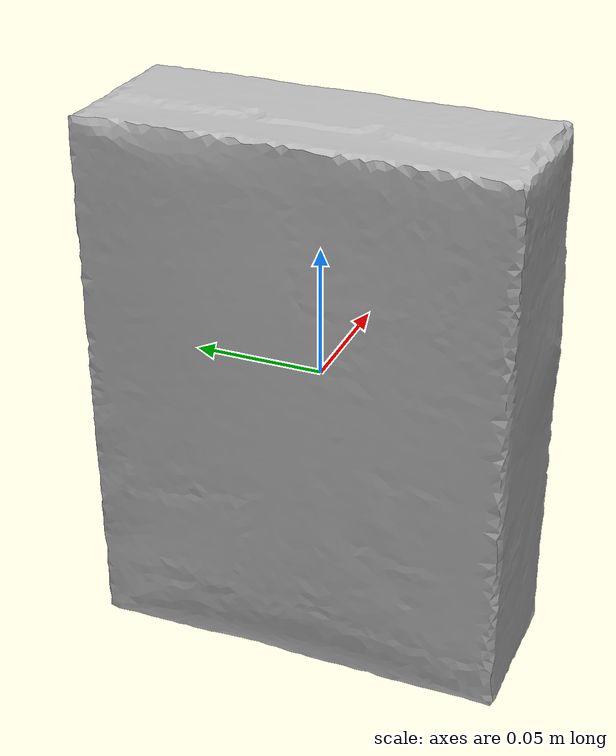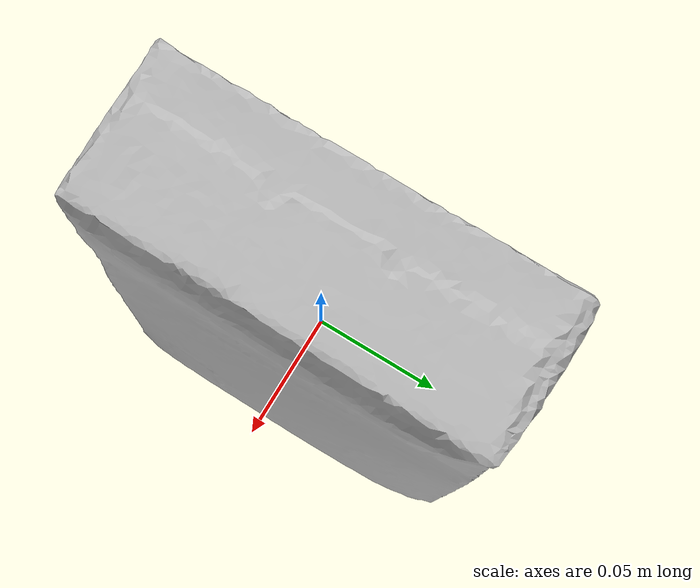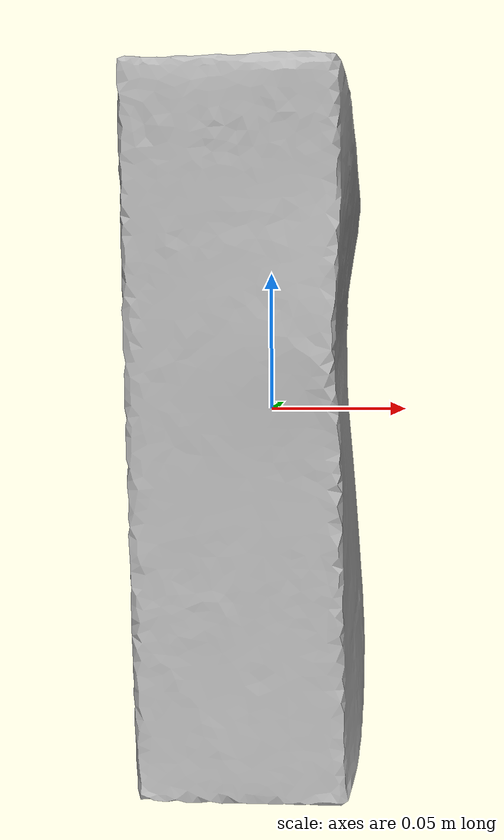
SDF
<?xml version='1.0'?>
<sdf version="1.4">
  <model name="cracker_box">
    <static>false</static>
    <link name="link">
      <inertial>
        <pose>0 0 0 3.1335923663863205 0.010946297886106997 3.140976285001705</pose>
        <mass>0.0021732875685518717</mass>
        <inertia>
          <ixx>1.2667764335249053e-05</ixx>
          <ixy>1.5716431638507526e-23</ixy>
          <ixz>-2.6469779601696886e-23</ixz>
          <iyy>8.895223860935145e-06</iyy>
          <iyz>7.279189390466644e-22</iyz>
          <izz>5.284067250610004e-06</izz>
        </inertia>
      </inertial>
      <collision name="collision">
        <geometry>
          <mesh>
            <!-- Use a downsampled mesh for collisions -->
            <uri>model://003_cracker_box/google_16k/textured_simple.obj</uri>
	        </mesh>
        </geometry>
        <surface>
      </surface>
      </collision>
      <visual name="visual">
        <geometry>
          <mesh>
            <uri>model://003_cracker_box/google_16k/textured_simple.obj</uri>
	        </mesh>
        </geometry>
      </visual>
    </link>
  </model>
</sdf>
